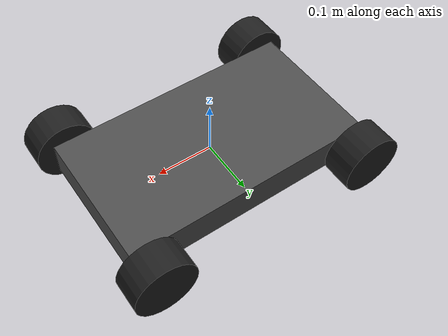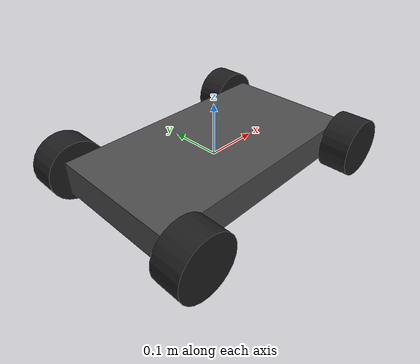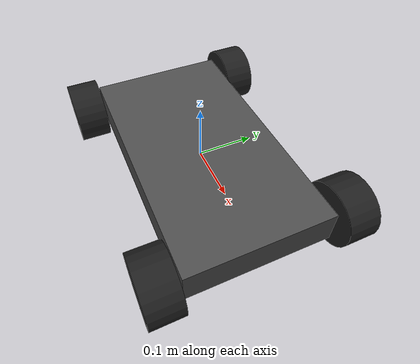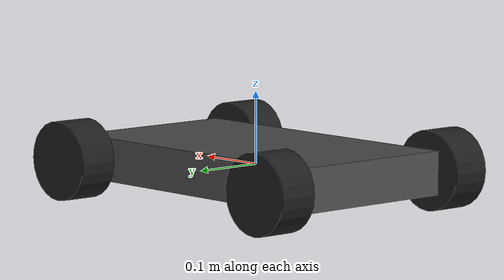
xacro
<?xml version="1.0"?>
<!-- Tacbot robot -->
<robot name="tacbot" xmlns:xacro="http://ros.org/wiki/xacro">

    <!-- Properties -->
    <xacro:property name="prefix" value="$(arg prefix)"/>
    <xacro:arg name="prefix" default="r1"/>
    <xacro:include filename="utils.xacro"/>
    <xacro:include filename="materials.xacro"/>

    <!-- Base link and wheels -->
    <xacro:include filename="base.xacro"/>
    <xacro:include filename="wheel.xacro"/>
    <base_link prefix="${prefix}"/>

    <wheel prefix="${prefix}" postfix="FL" side="1" front="1"/>
    <wheel prefix="${prefix}" postfix="FR" side="-1"  front="1"/>
    <wheel prefix="${prefix}" postfix="BL" side="1" front="-1"/>
    <wheel prefix="${prefix}" postfix="BR" side="-1"  front="-1"/>

    <xacro:include filename="base.gazebo.xacro"/>
    <base_gazebo prefix="${prefix}"/>

    <xacro:include filename="wheel.gazebo.xacro"/>
    <wheel_gazebo prefix="${prefix}" postfix="FL"/>
    <wheel_gazebo prefix="${prefix}" postfix="FR"/>
    <wheel_gazebo prefix="${prefix}" postfix="BL"/>
    <wheel_gazebo prefix="${prefix}" postfix="BR"/>

</robot>

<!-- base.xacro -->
<robot xmlns:xacro="http://ros.org/wiki/xacro">

    <!-- Base link parameters -->
    <xacro:property name="base_length"  value=".45"/>
    <xacro:property name="base_width"   value=".25"/>
    <xacro:property name="base_height"  value=".06"/>
    <xacro:property name="base_mass"    value="4"/>

    <xacro:macro name="base_link" params="prefix">

        <link name="${prefix}_base_link">
            <visual>
                <geometry>
                    <box size="${base_length} ${base_width} ${base_height}"/>
                </geometry>
                <origin xyz="0 0 0" rpy="0 0 0"/>
                <material name="dark_gray"/>
            </visual>
            <collision>
                <geometry>
                    <box size="${base_length} ${base_width} ${base_height}"/>
                </geometry>
                <origin xyz="0 0 0" rpy="0 0 0"/>
            </collision>
            <inertial>
                <origin xyz="0 0 0" rpy="0 0 0"/>
                <mass value="${base_mass}"/>
                <cuboid_inertia m="${base_mass}" x="${base_length}" y="${base_width}" z="${base_height}"/>
            </inertial>
        </link>

    </xacro:macro>

</robot>

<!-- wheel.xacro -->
<robot xmlns:xacro="http://ros.org/wiki/xacro">

    <!-- Wheel parameters -->
    <xacro:property name="wheel_width"  value=".055"/>
    <xacro:property name="wheel_radius" value=".055"/>
    <xacro:property name="wheel_dis"    value=".024"/>
    <xacro:property name="wheel_mass"   value=".5"/>

    <xacro:macro name="wheel" params="prefix postfix side front">

        <!-- Wheel joints -->
        <joint name="${prefix}_wheel_${postfix}_joint" type="continuous">
            <parent link="${prefix}_base_link"/>
            <child link="${prefix}_wheel_${postfix}"/>
            <origin xyz="${front*(base_length/2-wheel_dis)} ${side*(base_width/2+wheel_width/2 + 0.005)} 0"
                    rpy="${-pi/2} 0 0"/>
            <axis xyz="0 0 1"/>
        </joint>

        <!-- Wheel links -->
        <link name="${prefix}_wheel_${postfix}">
            <visual>
                <geometry>
                    <cylinder radius="${wheel_radius}" length="${wheel_width}"/>
                </geometry>
                <origin xyz="0 0 0" rpy="0 0 0"/>
                <material name="black"/>
            </visual>
            <collision>
                <geometry>
                    <cylinder radius="${wheel_radius}" length="${wheel_width}"/>
                </geometry>
                <origin xyz="0 0 0" rpy="0 0 0"/>
            </collision>
            <inertial>
                <origin xyz="0 0 0" rpy="0 0 0"/>
                <mass value="${wheel_mass}" />
                <cylinder_inertia m="${wheel_mass}" r="${wheel_radius}" h="${wheel_width}"/>
            </inertial>
        </link>

        <!-- Wheel transmissions -->
        <transmission name="${prefix}_tran_${postfix}">
            <type>transmission_interface/SimpleTransmission</type>
            <joint name="${prefix}_wheel_${postfix}_joint">
                <hardwareInterface>VelocityJointInterface</hardwareInterface>
            </joint>
            <actuator name="${prefix}_motor_${postfix}">
                <hardwareInterface>VelocityJointInterface</hardwareInterface>
                <mechanicalReduction>1</mechanicalReduction>
            </actuator>
        </transmission>
    </xacro:macro>

</robot>
